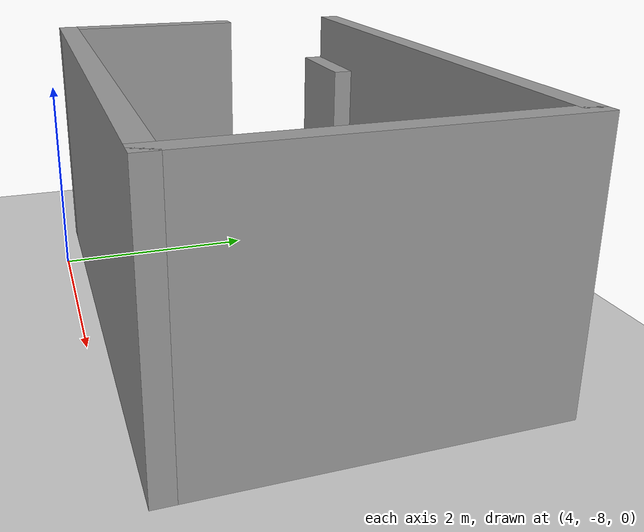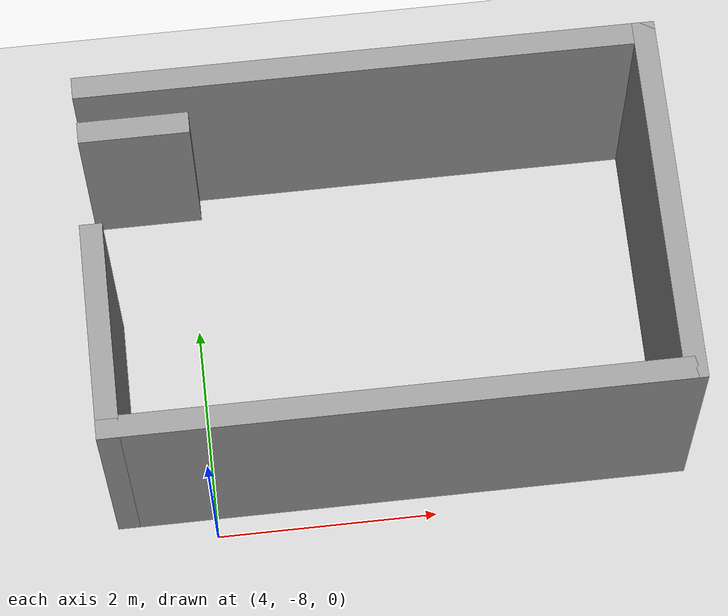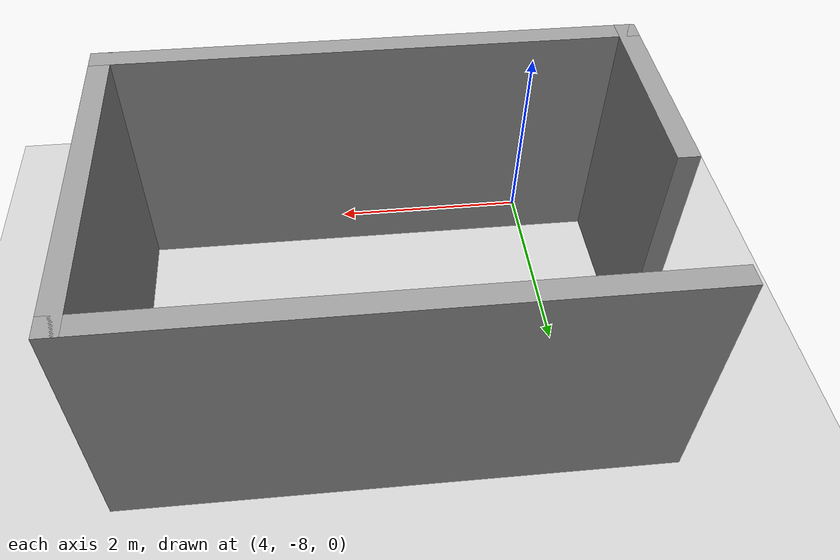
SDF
<sdf version="1.4">
 <world name="default">
  <light name="sun" type="directional">
   <pose>0 0 10 0 -0 0</pose>
   <diffuse>0.8 0.8 0.8 1</diffuse>
   <specular>0.2 0.2 0.2 1</specular>
   <attenuation>
    <range>1000</range>
    <constant>0.9</constant>
    <linear>0.01</linear>
    <quadratic>0.001</quadratic>
   </attenuation>
   <direction>-0.5 0.1 -0.9</direction>
  </light>
  <model name="ground_plane">
   <static>1</static>
   <link name="link">
    <collision name="collision">
     <geometry><plane><normal>0 0 1</normal><size>100 100</size></plane></geometry>
     <surface><friction><ode><mu>100</mu><mu2>50</mu2></ode></friction></surface>
    </collision>
    <visual name="visual">
     <cast_shadows>0</cast_shadows>
     <geometry><plane><normal>0 0 1</normal><size>100 100</size></plane></geometry>
     <material>
      <script><uri>file://media/materials/scripts/gazebo.material</uri><name>Gazebo/Grey</name></script>
     </material>
    </visual>
    <velocity_decay><linear>0</linear><angular>0</angular></velocity_decay>
   </link>
  </model>
  <physics type="ode">
   <max_step_size>0.001</max_step_size>
   <real_time_factor>1</real_time_factor>
   <real_time_update_rate>1000</real_time_update_rate>
   <gravity>0 0 -9.8</gravity>
  </physics>
  <scene><ambient>0.4 0.4 0.4 1</ambient><background>0.7 0.7 0.7 1</background><shadows>1</shadows></scene>
  <spherical_coordinates>
   <surface_model>EARTH_WGS84</surface_model>
   <latitude_deg>0</latitude_deg>
   <longitude_deg>0</longitude_deg>
   <elevation>0</elevation>
   <heading_deg>0</heading_deg>
  </spherical_coordinates>
  <model name="sampleroom">
   <link name="Door_0">
    <collision name="Door_0_Collision">
     <geometry><box><size>1 0.2 2</size></box></geometry>
     <pose>0 0 1 0 -0 0</pose>
    </collision>
    <visual name="Door_0_Visual">
     <pose>0 0 1 0 -0 0</pose>
     <geometry><box><size>1 0.2 2</size></box></geometry>
     <material>
      <script><uri>file://media/materials/scripts/gazebo.material</uri><name>Gazebo/Grey</name></script>
     </material>
    </visual>
    <velocity_decay><linear>0</linear><angular>0</angular></velocity_decay>
    <pose>-3.92 -1.75 0 0 -0 0</pose>
   </link>
   <link name="Wall_0">
    <collision name="Wall_0_Collision">
     <geometry><box><size>5.18373 0.2 2.5</size></box></geometry>
     <pose>0 0 1.25 0 -0 0</pose>
    </collision>
    <visual name="Wall_0_Visual">
     <pose>0 0 1.25 0 -0 0</pose>
     <geometry><box><size>5.18373 0.2 2.5</size></box></geometry>
     <material>
      <script><uri>file://media/materials/scripts/gazebo.material</uri><name>Gazebo/Grey</name></script>
     </material>
    </visual>
    <velocity_decay><linear>0</linear><angular>0</angular></velocity_decay>
    <pose>-1.81831 -1.54989 0 0 -0 0</pose>
   </link>
   <link name="Wall_1">
    <collision name="Wall_1_Collision">
     <geometry><box><size>3.38004 0.2 2.5</size></box></geometry>
     <pose>0 0 1.25 0 -0 0</pose>
    </collision>
    <visual name="Wall_1_Visual">
     <pose>0 0 1.25 0 -0 0</pose>
     <geometry><box><size>3.38004 0.2 2.5</size></box></geometry>
     <material>
      <script><uri>file://media/materials/scripts/gazebo.material</uri><name>Gazebo/Grey</name></script>
     </material>
    </visual>
    <velocity_decay><linear>0</linear><angular>0</angular></velocity_decay>
    <pose>0.673638 -3.13994 0 0 0 -1.5708</pose>
   </link>
   <link name="Wall_2">
    <collision name="Wall_2_Collision">
     <geometry><box><size>5.2138 0.2 2.5</size></box></geometry>
     <pose>0 0 1.25 0 -0 0</pose>
    </collision>
    <visual name="Wall_2_Visual">
     <pose>0 0 1.25 0 -0 0</pose>
     <geometry><box><size>5.2138 0.2 2.5</size></box></geometry>
     <material>
      <script><uri>file://media/materials/scripts/gazebo.material</uri><name>Gazebo/Grey</name></script>
     </material>
    </visual>
    <velocity_decay><linear>0</linear><angular>0</angular></velocity_decay>
    <pose>-1.83318 -4.73001 0 0 0 -3.14159</pose>
   </link>
   <link name="Wall_3">
    <collision name="Wall_3_Collision">
     <geometry><box><size>1.97014 0.2 2.5</size></box></geometry>
     <pose>0 0 1.25 0 -0 0</pose>
    </collision>
    <visual name="Wall_3_Visual">
     <pose>0 0 1.25 0 -0 0</pose>
     <geometry><box><size>1.97014 0.2 2.5</size></box></geometry>
     <material>
      <script><uri>file://media/materials/scripts/gazebo.material</uri><name>Gazebo/Grey</name></script>
     </material>
    </visual>
    <velocity_decay><linear>0</linear><angular>0</angular></velocity_decay>
    <pose>-4.34 -3.84496 0 0 -0 1.5708</pose>
   </link>
   <static>1</static>
   <pose>7.53903 -3 0 0 -0 0</pose>
  </model>
 </world>
</sdf>
